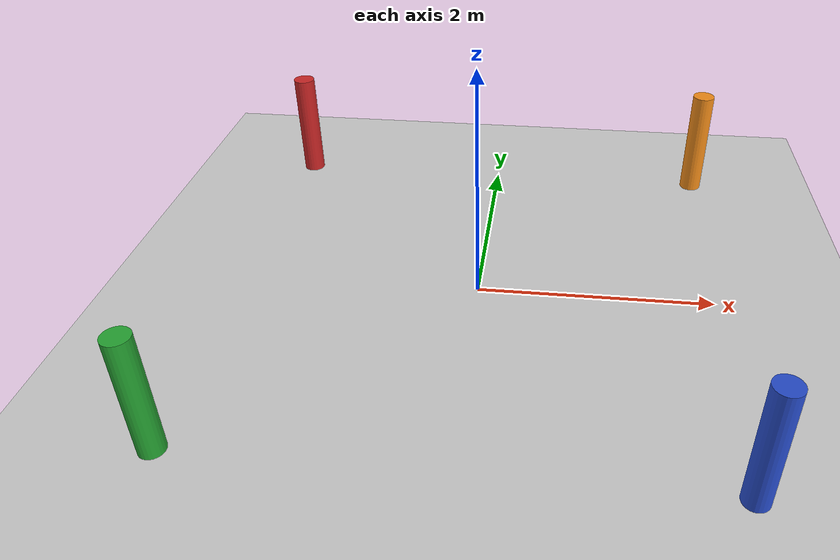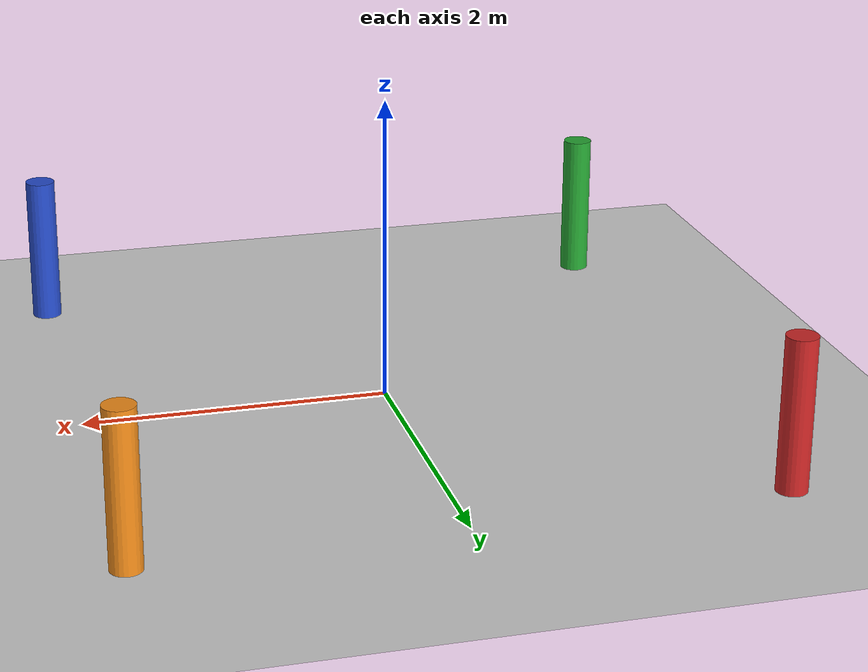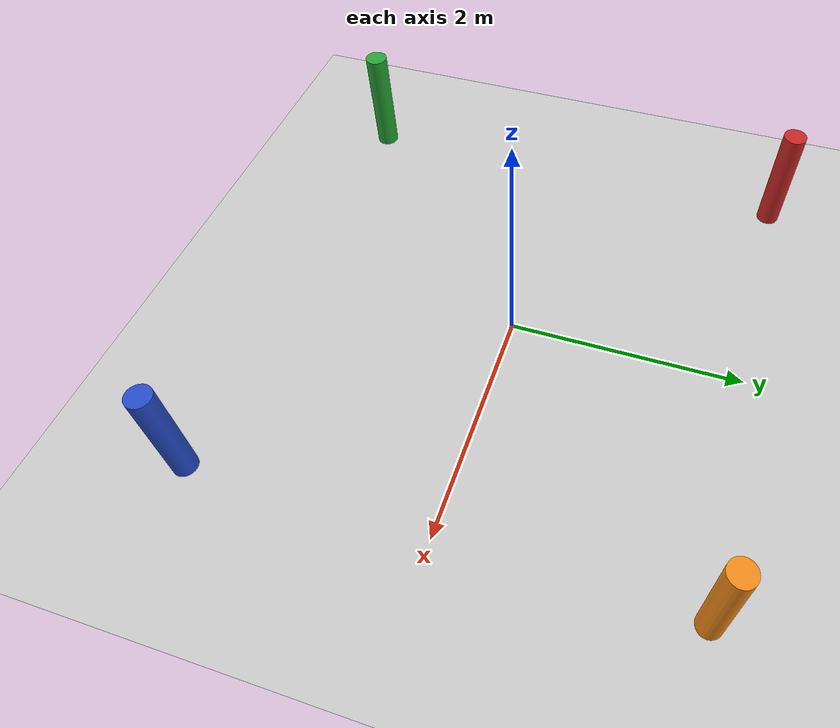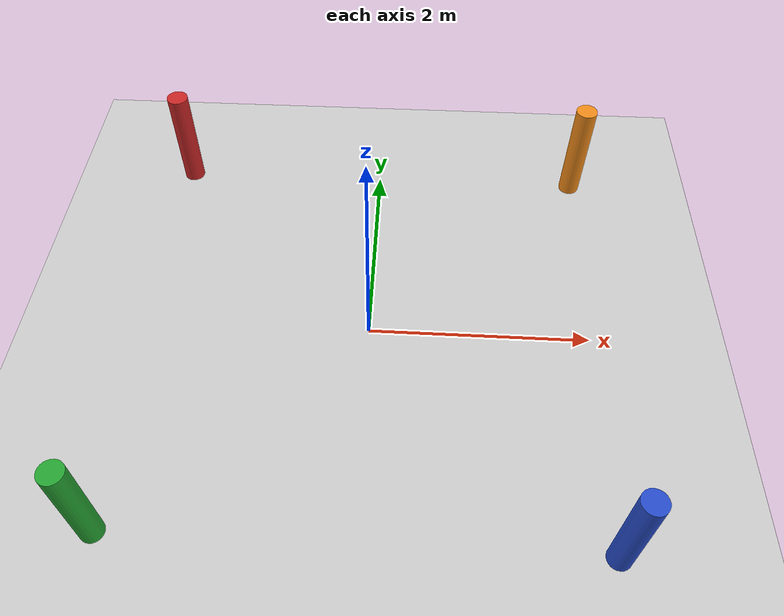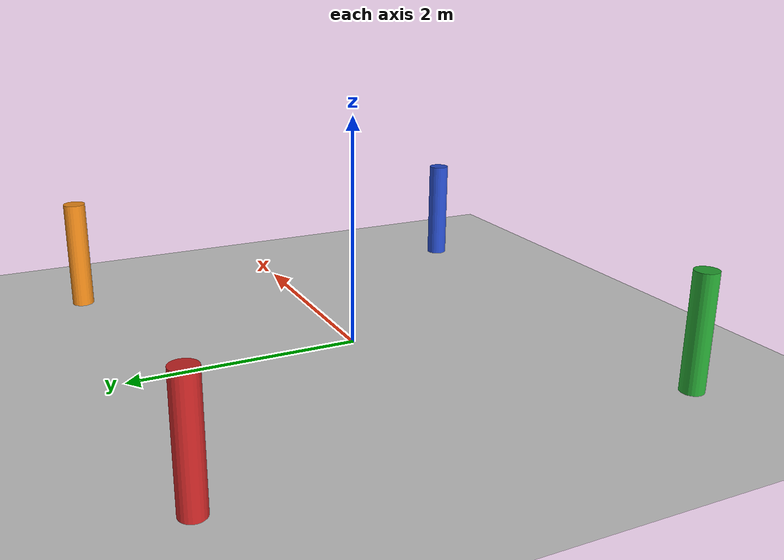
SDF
<?xml version="1.0"?>
<sdf version="1.5">
  <world name="default">

    <!-- A global light source -->
    <include>
      <uri>model://sun</uri>
    </include>

    <!-- A ground plane -->
    <include>
      <uri>model://ground_plane</uri>
    </include>

    <!-- setting location bar -->
    <model name='cylinder_1'>
      <pose>-2 2 0.5 0 0 0</pose>
      <link name='link'>
        <visual name='visual'>
          <geometry>
            <cylinder>
              <radius>0.1</radius>
              <length>1</length>
            </cylinder>
          </geometry>
          <material>
            <script>
              <name>Gazebo/Red</name>
              <uri>file://media/materials/scripts/gazebo.material</uri>
            </script>
          </material>
        </visual>
      </link>
    </model>

    <!-- setting location bar -->
    <model name='cylinder_2'>
      <pose>-2 -2 0.5 0 0 0</pose>
      <link name='link'>
        <visual name='visual'>
          <geometry>
            <cylinder>
              <radius>0.1</radius>
              <length>1</length>
            </cylinder>
          </geometry>
          <material>
            <script>
              <name>Gazebo/Green</name>
              <uri>file://media/materials/scripts/gazebo.material</uri>
            </script>
          </material>
        </visual>
      </link>
    </model>

    <!-- setting location bar -->
    <model name='cylinder_3'>
      <pose>2 -2 0.5 0 0 0</pose>
      <link name='link'>
        <visual name='visual'>
          <geometry>
            <cylinder>
              <radius>0.1</radius>
              <length>1</length>
            </cylinder>
          </geometry>
          <material>
            <script>
              <name>Gazebo/Blue</name>
              <uri>file://media/materials/scripts/gazebo.material</uri>
            </script>
          </material>
        </visual>
        <inertial>
          <mass>100000</mass>
          <inertia>
            <ixx>10000</ixx>
            <ixy>0</ixy>
            <ixz>0</ixz>
            <iyy>100000</iyy>
            <iyz>0</iyz>
            <izz>100000</izz>
          </inertia>
          <pose frame=''>0 0 0 0 -0 0</pose>
        </inertial>
        <collision name='collision'>
          <geometry>
            <cylinder>
              <radius>0.5</radius>
              <length>1</length>
            </cylinder>
          </geometry>
        </collision>
      </link>
    </model>

    <!-- setting location bar -->
    <model name='cylinder_4'>
      <pose>2 2 0.5 0 0 0</pose>
      <link name='link'>
        <visual name='visual'>
          <geometry>
            <cylinder>
              <radius>0.1</radius>
              <length>1</length>
            </cylinder>
          </geometry>
          <material>
            <script>
              <name>Gazebo/Orange</name>
              <uri>file://media/materials/scripts/gazebo.material</uri>
            </script>
          </material>
        </visual>
      </link>
    </model>

  </world>
</sdf>
